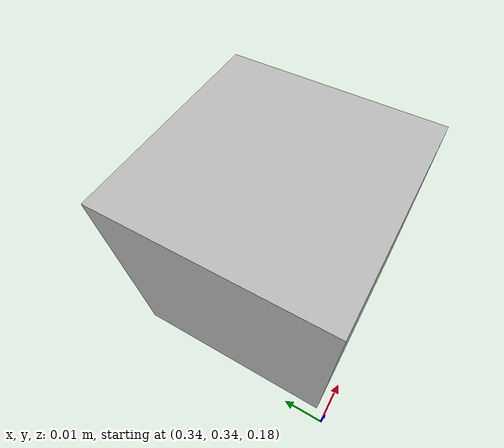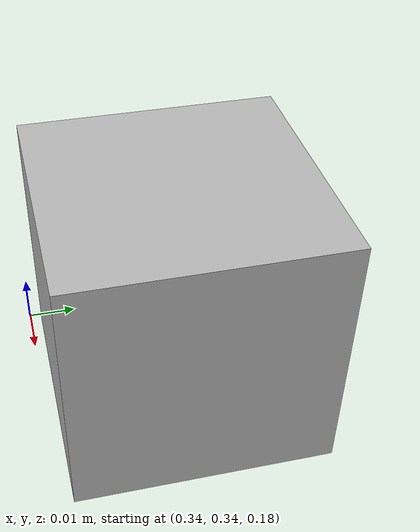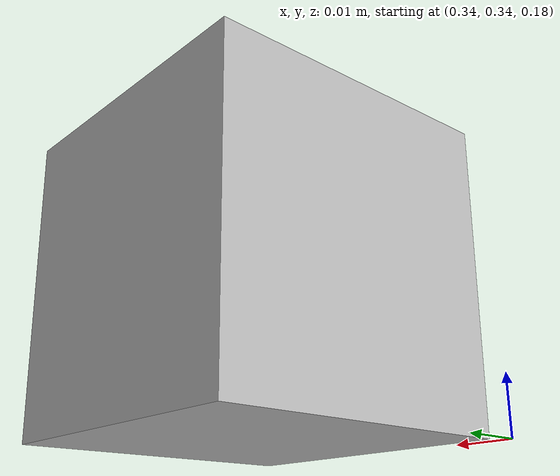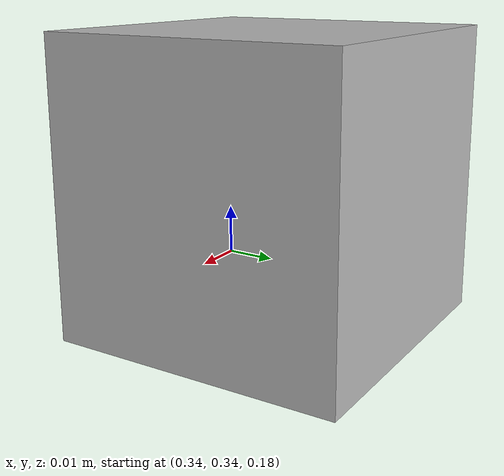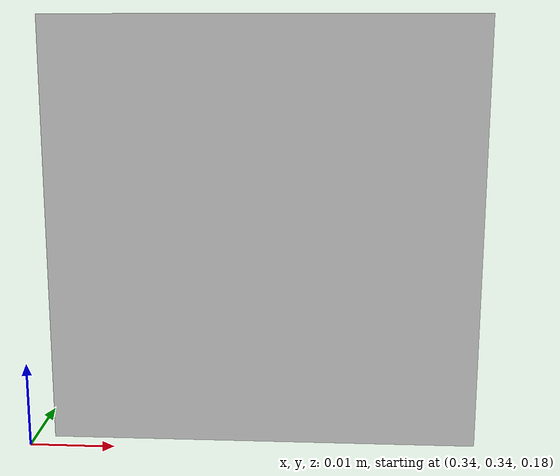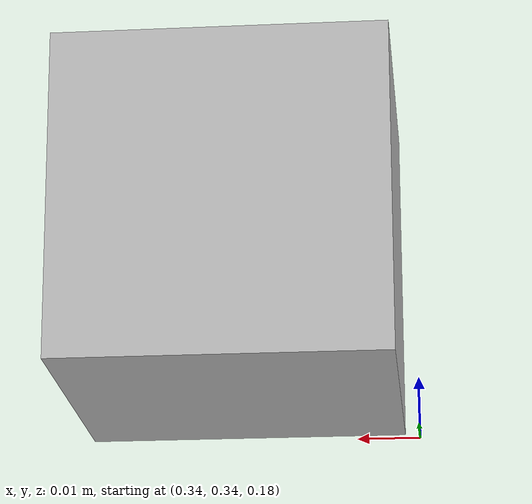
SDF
<?xml version="1.0" ?>
<sdf version="1.6">
  <model name="papercupbase">
    <static>false</static>
    <link name="link">
      <pose frame=''>0.367306 0.367306 0.205 0 -0 0</pose>
      <inertial>
        <mass>0.05</mass>
        <inertia>
          <ixx>1.54166666667e-05</ixx>
          <ixy>0</ixy>
          <ixz>0</ixz>
          <iyy>1.54166666667e-05</iyy>
          <iyz>0</iyz>
          <izz>1e-05</izz>
        </inertia>
      </inertial>
      <collision name="collision">
        <pose>0 0 0 0 0 0</pose>
        <geometry>
          <box>
            <size>0.05 0.05 0.05</size>
          </box>
        </geometry>
        <surface>
          <friction>
            <ode>
              <mu>1000000000.0</mu>
              <mu2>10000000.0</mu2>
            </ode>
          </friction>
          <contact>
            <ode>
              <kp>100.0</kp>
              <kd>100.0</kd>
              <max_vel>1.0</max_vel>
              <min_depth>0.002</min_depth>
            </ode>
          </contact>
        </surface>
      </collision>
      <visual name="visual">
        <pose>0 0 0 0 0 0</pose>
        <geometry>
          <box>
            <size>0.05 0.05 0.05</size>
          </box>
        </geometry>
      </visual>
    </link>
  </model>
</sdf>
